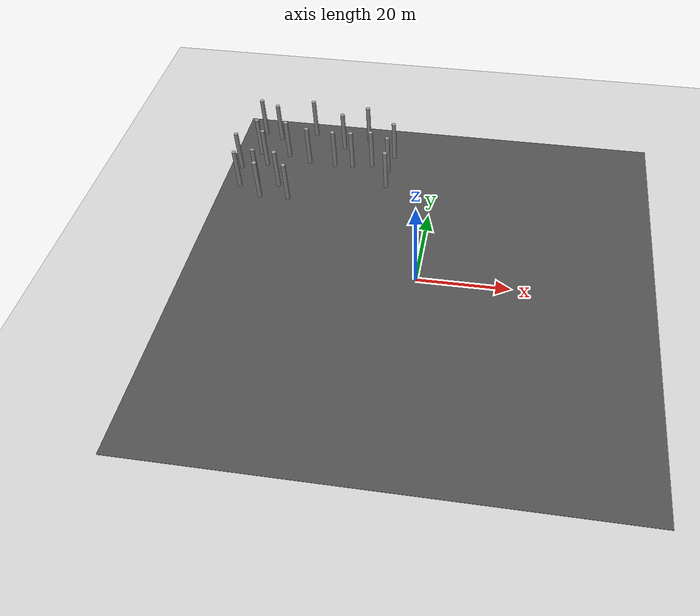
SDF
<sdf version="1.6">
 <world name="default">
  <model name="ground_plane">
   <static>1</static>
   <link name="link">
    <collision name="collision">
     <geometry><plane><normal>0 0 1</normal><size>100 100</size></plane></geometry>
     <surface><friction><ode><mu>100</mu><mu2>50</mu2></ode></friction></surface>
    </collision>
    <visual name="visual">
     <cast_shadows>0</cast_shadows>
     <geometry><plane><normal>0 0 1</normal><size>100 100</size></plane></geometry>
     <material>
      <script><uri>file://media/materials/scripts/gazebo.material</uri><name>Gazebo/Grey</name></script>
     </material>
    </visual>
   </link>
  </model>
  <model name="asphalt_plane">
   <static>1</static>
   <link name="link">
    <collision name="collision"><geometry><box><size>100 100 0.1</size></box></geometry></collision>
    <visual name="visual">
     <cast_shadows>0</cast_shadows>
     <geometry><box><size>100 100 0.1</size></box></geometry>
     <material>
      <script>
       <uri>model://asphalt_plane/materials/scripts</uri>
       <uri>model://asphalt_plane/materials/textures</uri>
       <name>vrc/asphalt</name>
      </script>
     </material>
    </visual>
   </link>
   <pose>0.078502 0.417861 0 0 -0 0</pose>
  </model>
  <model name="forest">
   <link name="link_clone_13_clone_11">
    <pose>-20.1128 35.8889 0 0 -0 0</pose>
    <inertial>
     <mass>1000</mass>
     <inertia><ixx>0.145833</ixx><ixy>0</ixy><ixz>0</ixz><iyy>0.145833</iyy><iyz>0</iyz><izz>0.125</izz></inertia>
     <pose>0 0 5 0 -0 0</pose>
    </inertial>
    <visual name="visual">
     <geometry><cylinder><radius>0.5</radius><length>10</length></cylinder></geometry>
     <material>
      <script><name>Gazebo/Grey</name><uri>file://media/materials/scripts/gazebo.material</uri></script>
      <ambient>0.3 0.3 0.3 1</ambient>
      <diffuse>0.7 0.7 0.7 1</diffuse>
      <specular>0.01 0.01 0.01 1</specular>
      <emissive>0 0 0 1</emissive>
      <shader type="vertex"><normal_map>__default__</normal_map></shader>
     </material>
     <pose>0 0 5 0 -0 0</pose>
    </visual>
    <collision name="collision">
     <pose>0 0 5 0 -0 0</pose>
     <geometry><cylinder><radius>0.5</radius><length>10</length></cylinder></geometry>
     <surface>
      <friction>
       <ode><mu>1</mu><mu2>1</mu2><fdir1>0 0 0</fdir1><slip1>0</slip1><slip2>0</slip2></ode>
       <torsional>
        <coefficient>1</coefficient>
        <patch_radius>0</patch_radius>
        <surface_radius>0</surface_radius>
        <use_patch_radius>1</use_patch_radius>
        <ode><slip>0</slip></ode>
       </torsional>
      </friction>
      <bounce><restitution_coefficient>0</restitution_coefficient><threshold>1e+06</threshold></bounce>
      <contact>
       <collide_without_contact>0</collide_without_contact>
       <collide_without_contact_bitmask>1</collide_without_contact_bitmask>
       <collide_bitmask>1</collide_bitmask>
       <ode>
        <soft_cfm>0</soft_cfm>
        <soft_erp>0.2</soft_erp>
        <kp>1e+13</kp>
        <kd>1</kd>
        <max_vel>0.01</max_vel>
        <min_depth>0</min_depth>
       </ode>
       <bullet>
        <split_impulse>1</split_impulse>
        <split_impulse_penetration_threshold>-0.01</split_impulse_penetration_threshold>
        <soft_cfm>0</soft_cfm>
        <soft_erp>0.2</soft_erp>
        <kp>1e+13</kp>
        <kd>1</kd>
       </bullet>
      </contact>
     </surface>
    </collision>
   </link>
   <link name="link_clone_13_clone_2">
    <pose>-10.8466 29.7188 0 0 -0 0</pose>
    <inertial>
     <mass>1000</mass>
     <inertia><ixx>0.145833</ixx><ixy>0</ixy><ixz>0</ixz><iyy>0.145833</iyy><iyz>0</iyz><izz>0.125</izz></inertia>
     <pose>0 0 5 0 -0 0</pose>
    </inertial>
    <visual name="visual">
     <geometry><cylinder><radius>0.5</radius><length>10</length></cylinder></geometry>
     <material>
      <script><name>Gazebo/Grey</name><uri>file://media/materials/scripts/gazebo.material</uri></script>
      <ambient>0.3 0.3 0.3 1</ambient>
      <diffuse>0.7 0.7 0.7 1</diffuse>
      <specular>0.01 0.01 0.01 1</specular>
      <emissive>0 0 0 1</emissive>
      <shader type="vertex"><normal_map>__default__</normal_map></shader>
     </material>
     <pose>0 0 5 0 -0 0</pose>
    </visual>
    <collision name="collision">
     <pose>0 0 5 0 -0 0</pose>
     <geometry><cylinder><radius>0.5</radius><length>10</length></cylinder></geometry>
     <surface>
      <friction>
       <ode><mu>1</mu><mu2>1</mu2><fdir1>0 0 0</fdir1><slip1>0</slip1><slip2>0</slip2></ode>
       <torsional>
        <coefficient>1</coefficient>
        <patch_radius>0</patch_radius>
        <surface_radius>0</surface_radius>
        <use_patch_radius>1</use_patch_radius>
        <ode><slip>0</slip></ode>
       </torsional>
      </friction>
      <bounce><restitution_coefficient>0</restitution_coefficient><threshold>1e+06</threshold></bounce>
      <contact>
       <collide_without_contact>0</collide_without_contact>
       <collide_without_contact_bitmask>1</collide_without_contact_bitmask>
       <collide_bitmask>1</collide_bitmask>
       <ode>
        <soft_cfm>0</soft_cfm>
        <soft_erp>0.2</soft_erp>
        <kp>1e+13</kp>
        <kd>1</kd>
        <max_vel>0.01</max_vel>
        <min_depth>0</min_depth>
       </ode>
       <bullet>
        <split_impulse>1</split_impulse>
        <split_impulse_penetration_threshold>-0.01</split_impulse_penetration_threshold>
        <soft_cfm>0</soft_cfm>
        <soft_erp>0.2</soft_erp>
        <kp>1e+13</kp>
        <kd>1</kd>
       </bullet>
      </contact>
     </surface>
    </collision>
   </link>
   <link name="link_clone_13_clone_44">
    <pose>-17.8127 46.1812 0 0 -0 0</pose>
    <inertial>
     <mass>1000</mass>
     <inertia><ixx>0.145833</ixx><ixy>0</ixy><ixz>0</ixz><iyy>0.145833</iyy><iyz>0</iyz><izz>0.125</izz></inertia>
     <pose>0 0 5 0 -0 0</pose>
    </inertial>
    <visual name="visual">
     <geometry><cylinder><radius>0.5</radius><length>10</length></cylinder></geometry>
     <material>
      <script><name>Gazebo/Grey</name><uri>file://media/materials/scripts/gazebo.material</uri></script>
      <ambient>0.3 0.3 0.3 1</ambient>
      <diffuse>0.7 0.7 0.7 1</diffuse>
      <specular>0.01 0.01 0.01 1</specular>
      <emissive>0 0 0 1</emissive>
      <shader type="vertex"><normal_map>__default__</normal_map></shader>
     </material>
     <pose>0 0 5 0 -0 0</pose>
    </visual>
    <collision name="collision">
     <pose>0 0 5 0 -0 0</pose>
     <geometry><cylinder><radius>0.5</radius><length>10</length></cylinder></geometry>
     <surface>
      <friction>
       <ode><mu>1</mu><mu2>1</mu2><fdir1>0 0 0</fdir1><slip1>0</slip1><slip2>0</slip2></ode>
       <torsional>
        <coefficient>1</coefficient>
        <patch_radius>0</patch_radius>
        <surface_radius>0</surface_radius>
        <use_patch_radius>1</use_patch_radius>
        <ode><slip>0</slip></ode>
       </torsional>
      </friction>
      <bounce><restitution_coefficient>0</restitution_coefficient><threshold>1e+06</threshold></bounce>
      <contact>
       <collide_without_contact>0</collide_without_contact>
       <collide_without_contact_bitmask>1</collide_without_contact_bitmask>
       <collide_bitmask>1</collide_bitmask>
       <ode>
        <soft_cfm>0</soft_cfm>
        <soft_erp>0.2</soft_erp>
        <kp>1e+13</kp>
        <kd>1</kd>
        <max_vel>0.01</max_vel>
        <min_depth>0</min_depth>
       </ode>
       <bullet>
        <split_impulse>1</split_impulse>
        <split_impulse_penetration_threshold>-0.01</split_impulse_penetration_threshold>
        <soft_cfm>0</soft_cfm>
        <soft_erp>0.2</soft_erp>
        <kp>1e+13</kp>
        <kd>1</kd>
       </bullet>
      </contact>
     </surface>
    </collision>
   </link>
   <link name="link_clone_13_clone_45">
    <pose>-23.4129 42.7646 0 0 -0 0</pose>
    <inertial>
     <mass>1000</mass>
     <inertia><ixx>0.145833</ixx><ixy>0</ixy><ixz>0</ixz><iyy>0.145833</iyy><iyz>0</iyz><izz>0.125</izz></inertia>
     <pose>0 0 5 0 -0 0</pose>
    </inertial>
    <visual name="visual">
     <geometry><cylinder><radius>0.5</radius><length>10</length></cylinder></geometry>
     <material>
      <script><name>Gazebo/Grey</name><uri>file://media/materials/scripts/gazebo.material</uri></script>
      <ambient>0.3 0.3 0.3 1</ambient>
      <diffuse>0.7 0.7 0.7 1</diffuse>
      <specular>0.01 0.01 0.01 1</specular>
      <emissive>0 0 0 1</emissive>
      <shader type="vertex"><normal_map>__default__</normal_map></shader>
     </material>
     <pose>0 0 5 0 -0 0</pose>
    </visual>
    <collision name="collision">
     <pose>0 0 5 0 -0 0</pose>
     <geometry><cylinder><radius>0.5</radius><length>10</length></cylinder></geometry>
     <surface>
      <friction>
       <ode><mu>1</mu><mu2>1</mu2><fdir1>0 0 0</fdir1><slip1>0</slip1><slip2>0</slip2></ode>
       <torsional>
        <coefficient>1</coefficient>
        <patch_radius>0</patch_radius>
        <surface_radius>0</surface_radius>
        <use_patch_radius>1</use_patch_radius>
        <ode><slip>0</slip></ode>
       </torsional>
      </friction>
      <bounce><restitution_coefficient>0</restitution_coefficient><threshold>1e+06</threshold></bounce>
      <contact>
       <collide_without_contact>0</collide_without_contact>
       <collide_without_contact_bitmask>1</collide_without_contact_bitmask>
       <collide_bitmask>1</collide_bitmask>
       <ode>
        <soft_cfm>0</soft_cfm>
        <soft_erp>0.2</soft_erp>
        <kp>1e+13</kp>
        <kd>1</kd>
        <max_vel>0.01</max_vel>
        <min_depth>0</min_depth>
       </ode>
       <bullet>
        <split_impulse>1</split_impulse>
        <split_impulse_penetration_threshold>-0.01</split_impulse_penetration_threshold>
        <soft_cfm>0</soft_cfm>
        <soft_erp>0.2</soft_erp>
        <kp>1e+13</kp>
        <kd>1</kd>
       </bullet>
      </contact>
     </surface>
    </collision>
   </link>
   <link name="link_clone_13_clone_46">
    <pose>-30.7424 36.0761 0 0 -0 0</pose>
    <inertial>
     <mass>1000</mass>
     <inertia><ixx>0.145833</ixx><ixy>0</ixy><ixz>0</ixz><iyy>0.145833</iyy><iyz>0</iyz><izz>0.125</izz></inertia>
     <pose>0 0 5 0 -0 0</pose>
    </inertial>
    <visual name="visual">
     <geometry><cylinder><radius>0.5</radius><length>10</length></cylinder></geometry>
     <material>
      <script><name>Gazebo/Grey</name><uri>file://media/materials/scripts/gazebo.material</uri></script>
      <ambient>0.3 0.3 0.3 1</ambient>
      <diffuse>0.7 0.7 0.7 1</diffuse>
      <specular>0.01 0.01 0.01 1</specular>
      <emissive>0 0 0 1</emissive>
      <shader type="vertex"><normal_map>__default__</normal_map></shader>
     </material>
     <pose>0 0 5 0 -0 0</pose>
    </visual>
    <collision name="collision">
     <pose>0 0 5 0 -0 0</pose>
     <geometry><cylinder><radius>0.5</radius><length>10</length></cylinder></geometry>
     <surface>
      <friction>
       <ode><mu>1</mu><mu2>1</mu2><fdir1>0 0 0</fdir1><slip1>0</slip1><slip2>0</slip2></ode>
       <torsional>
        <coefficient>1</coefficient>
        <patch_radius>0</patch_radius>
        <surface_radius>0</surface_radius>
        <use_patch_radius>1</use_patch_radius>
        <ode><slip>0</slip></ode>
       </torsional>
      </friction>
      <bounce><restitution_coefficient>0</restitution_coefficient><threshold>1e+06</threshold></bounce>
      <contact>
       <collide_without_contact>0</collide_without_contact>
       <collide_without_contact_bitmask>1</collide_without_contact_bitmask>
       <collide_bitmask>1</collide_bitmask>
       <ode>
        <soft_cfm>0</soft_cfm>
        <soft_erp>0.2</soft_erp>
        <kp>1e+13</kp>
        <kd>1</kd>
        <max_vel>0.01</max_vel>
        <min_depth>0</min_depth>
       </ode>
       <bullet>
        <split_impulse>1</split_impulse>
        <split_impulse_penetration_threshold>-0.01</split_impulse_penetration_threshold>
        <soft_cfm>0</soft_cfm>
        <soft_erp>0.2</soft_erp>
        <kp>1e+13</kp>
        <kd>1</kd>
       </bullet>
      </contact>
     </surface>
    </collision>
   </link>
   <link name="link_clone_13_clone_48">
    <pose>-24.3524 35.6446 0 0 -0 0</pose>
    <inertial>
     <mass>1000</mass>
     <inertia><ixx>0.145833</ixx><ixy>0</ixy><ixz>0</ixz><iyy>0.145833</iyy><iyz>0</iyz><izz>0.125</izz></inertia>
     <pose>0 0 5 0 -0 0</pose>
    </inertial>
    <visual name="visual">
     <geometry><cylinder><radius>0.5</radius><length>10</length></cylinder></geometry>
     <material>
      <script><name>Gazebo/Grey</name><uri>file://media/materials/scripts/gazebo.material</uri></script>
      <ambient>0.3 0.3 0.3 1</ambient>
      <diffuse>0.7 0.7 0.7 1</diffuse>
      <specular>0.01 0.01 0.01 1</specular>
      <emissive>0 0 0 1</emissive>
      <shader type="vertex"><normal_map>__default__</normal_map></shader>
     </material>
     <pose>0 0 5 0 -0 0</pose>
    </visual>
    <collision name="collision">
     <pose>0 0 5 0 -0 0</pose>
     <geometry><cylinder><radius>0.5</radius><length>10</length></cylinder></geometry>
     <surface>
      <friction>
       <ode><mu>1</mu><mu2>1</mu2><fdir1>0 0 0</fdir1><slip1>0</slip1><slip2>0</slip2></ode>
       <torsional>
        <coefficient>1</coefficient>
        <patch_radius>0</patch_radius>
        <surface_radius>0</surface_radius>
        <use_patch_radius>1</use_patch_radius>
        <ode><slip>0</slip></ode>
       </torsional>
      </friction>
      <bounce><restitution_coefficient>0</restitution_coefficient><threshold>1e+06</threshold></bounce>
      <contact>
       <collide_without_contact>0</collide_without_contact>
       <collide_without_contact_bitmask>1</collide_without_contact_bitmask>
       <collide_bitmask>1</collide_bitmask>
       <ode>
        <soft_cfm>0</soft_cfm>
        <soft_erp>0.2</soft_erp>
        <kp>1e+13</kp>
        <kd>1</kd>
        <max_vel>0.01</max_vel>
        <min_depth>0</min_depth>
       </ode>
       <bullet>
        <split_impulse>1</split_impulse>
        <split_impulse_penetration_threshold>-0.01</split_impulse_penetration_threshold>
        <soft_cfm>0</soft_cfm>
        <soft_erp>0.2</soft_erp>
        <kp>1e+13</kp>
        <kd>1</kd>
       </bullet>
      </contact>
     </surface>
    </collision>
   </link>
   <link name="link_clone_13_clone_5">
    <pose>-10.5712 40.7884 0 0 -0 0</pose>
    <inertial>
     <mass>1000</mass>
     <inertia><ixx>0.145833</ixx><ixy>0</ixy><ixz>0</ixz><iyy>0.145833</iyy><iyz>0</iyz><izz>0.125</izz></inertia>
     <pose>0 0 5 0 -0 0</pose>
    </inertial>
    <visual name="visual">
     <geometry><cylinder><radius>0.5</radius><length>10</length></cylinder></geometry>
     <material>
      <script><name>Gazebo/Grey</name><uri>file://media/materials/scripts/gazebo.material</uri></script>
      <ambient>0.3 0.3 0.3 1</ambient>
      <diffuse>0.7 0.7 0.7 1</diffuse>
      <specular>0.01 0.01 0.01 1</specular>
      <emissive>0 0 0 1</emissive>
      <shader type="vertex"><normal_map>__default__</normal_map></shader>
     </material>
     <pose>0 0 5 0 -0 0</pose>
    </visual>
    <collision name="collision">
     <pose>0 0 5 0 -0 0</pose>
     <geometry><cylinder><radius>0.5</radius><length>10</length></cylinder></geometry>
     <surface>
      <friction>
       <ode><mu>1</mu><mu2>1</mu2><fdir1>0 0 0</fdir1><slip1>0</slip1><slip2>0</slip2></ode>
       <torsional>
        <coefficient>1</coefficient>
        <patch_radius>0</patch_radius>
        <surface_radius>0</surface_radius>
        <use_patch_radius>1</use_patch_radius>
        <ode><slip>0</slip></ode>
       </torsional>
      </friction>
      <bounce><restitution_coefficient>0</restitution_coefficient><threshold>1e+06</threshold></bounce>
      <contact>
       <collide_without_contact>0</collide_without_contact>
       <collide_without_contact_bitmask>1</collide_without_contact_bitmask>
       <collide_bitmask>1</collide_bitmask>
       <ode>
        <soft_cfm>0</soft_cfm>
        <soft_erp>0.2</soft_erp>
        <kp>1e+13</kp>
        <kd>1</kd>
        <max_vel>0.01</max_vel>
        <min_depth>0</min_depth>
       </ode>
       <bullet>
        <split_impulse>1</split_impulse>
        <split_impulse_penetration_threshold>-0.01</split_impulse_penetration_threshold>
        <soft_cfm>0</soft_cfm>
        <soft_erp>0.2</soft_erp>
        <kp>1e+13</kp>
        <kd>1</kd>
       </bullet>
      </contact>
     </surface>
    </collision>
   </link>
   <link name="link_clone_13_clone_50">
    <pose>-36.1059 26.5286 0 0 -0 0</pose>
    <inertial>
     <mass>1000</mass>
     <inertia><ixx>0.145833</ixx><ixy>0</ixy><ixz>0</ixz><iyy>0.145833</iyy><iyz>0</iyz><izz>0.125</izz></inertia>
     <pose>0 0 5 0 -0 0</pose>
    </inertial>
    <visual name="visual">
     <geometry><cylinder><radius>0.5</radius><length>10</length></cylinder></geometry>
     <material>
      <script><name>Gazebo/Grey</name><uri>file://media/materials/scripts/gazebo.material</uri></script>
      <ambient>0.3 0.3 0.3 1</ambient>
      <diffuse>0.7 0.7 0.7 1</diffuse>
      <specular>0.01 0.01 0.01 1</specular>
      <emissive>0 0 0 1</emissive>
      <shader type="vertex"><normal_map>__default__</normal_map></shader>
     </material>
     <pose>0 0 5 0 -0 0</pose>
    </visual>
    <collision name="collision">
     <pose>0 0 5 0 -0 0</pose>
     <geometry><cylinder><radius>0.5</radius><length>10</length></cylinder></geometry>
     <surface>
      <friction>
       <ode><mu>1</mu><mu2>1</mu2><fdir1>0 0 0</fdir1><slip1>0</slip1><slip2>0</slip2></ode>
       <torsional>
        <coefficient>1</coefficient>
        <patch_radius>0</patch_radius>
        <surface_radius>0</surface_radius>
        <use_patch_radius>1</use_patch_radius>
        <ode><slip>0</slip></ode>
       </torsional>
      </friction>
      <bounce><restitution_coefficient>0</restitution_coefficient><threshold>1e+06</threshold></bounce>
      <contact>
       <collide_without_contact>0</collide_without_contact>
       <collide_without_contact_bitmask>1</collide_without_contact_bitmask>
       <collide_bitmask>1</collide_bitmask>
       <ode>
        <soft_cfm>0</soft_cfm>
        <soft_erp>0.2</soft_erp>
        <kp>1e+13</kp>
        <kd>1</kd>
        <max_vel>0.01</max_vel>
        <min_depth>0</min_depth>
       </ode>
       <bullet>
        <split_impulse>1</split_impulse>
        <split_impulse_penetration_threshold>-0.01</split_impulse_penetration_threshold>
        <soft_cfm>0</soft_cfm>
        <soft_erp>0.2</soft_erp>
        <kp>1e+13</kp>
        <kd>1</kd>
       </bullet>
      </contact>
     </surface>
    </collision>
   </link>
   <link name="link_clone_13_clone_51">
    <pose>-36.2123 37.7752 0 0 -0 0</pose>
    <inertial>
     <mass>1000</mass>
     <inertia><ixx>0.145833</ixx><ixy>0</ixy><ixz>0</ixz><iyy>0.145833</iyy><iyz>0</iyz><izz>0.125</izz></inertia>
     <pose>0 0 5 0 -0 0</pose>
    </inertial>
    <visual name="visual">
     <geometry><cylinder><radius>0.5</radius><length>10</length></cylinder></geometry>
     <material>
      <script><name>Gazebo/Grey</name><uri>file://media/materials/scripts/gazebo.material</uri></script>
      <ambient>0.3 0.3 0.3 1</ambient>
      <diffuse>0.7 0.7 0.7 1</diffuse>
      <specular>0.01 0.01 0.01 1</specular>
      <emissive>0 0 0 1</emissive>
      <shader type="vertex"><normal_map>__default__</normal_map></shader>
     </material>
     <pose>0 0 5 0 -0 0</pose>
    </visual>
    <collision name="collision">
     <pose>0 0 5 0 -0 0</pose>
     <geometry><cylinder><radius>0.5</radius><length>10</length></cylinder></geometry>
     <surface>
      <friction>
       <ode><mu>1</mu><mu2>1</mu2><fdir1>0 0 0</fdir1><slip1>0</slip1><slip2>0</slip2></ode>
       <torsional>
        <coefficient>1</coefficient>
        <patch_radius>0</patch_radius>
        <surface_radius>0</surface_radius>
        <use_patch_radius>1</use_patch_radius>
        <ode><slip>0</slip></ode>
       </torsional>
      </friction>
      <bounce><restitution_coefficient>0</restitution_coefficient><threshold>1e+06</threshold></bounce>
      <contact>
       <collide_without_contact>0</collide_without_contact>
       <collide_without_contact_bitmask>1</collide_without_contact_bitmask>
       <collide_bitmask>1</collide_bitmask>
       <ode>
        <soft_cfm>0</soft_cfm>
        <soft_erp>0.2</soft_erp>
        <kp>1e+13</kp>
        <kd>1</kd>
        <max_vel>0.01</max_vel>
        <min_depth>0</min_depth>
       </ode>
       <bullet>
        <split_impulse>1</split_impulse>
        <split_impulse_penetration_threshold>-0.01</split_impulse_penetration_threshold>
        <soft_cfm>0</soft_cfm>
        <soft_erp>0.2</soft_erp>
        <kp>1e+13</kp>
        <kd>1</kd>
       </bullet>
      </contact>
     </surface>
    </collision>
   </link>
   <link name="link_clone_13_clone_52">
    <pose>-31.4868 47.0307 0 0 -0 0</pose>
    <inertial>
     <mass>1000</mass>
     <inertia><ixx>0.145833</ixx><ixy>0</ixy><ixz>0</ixz><iyy>0.145833</iyy><iyz>0</iyz><izz>0.125</izz></inertia>
     <pose>0 0 5 0 -0 0</pose>
    </inertial>
    <visual name="visual">
     <geometry><cylinder><radius>0.5</radius><length>10</length></cylinder></geometry>
     <material>
      <script><name>Gazebo/Grey</name><uri>file://media/materials/scripts/gazebo.material</uri></script>
      <ambient>0.3 0.3 0.3 1</ambient>
      <diffuse>0.7 0.7 0.7 1</diffuse>
      <specular>0.01 0.01 0.01 1</specular>
      <emissive>0 0 0 1</emissive>
      <shader type="vertex"><normal_map>__default__</normal_map></shader>
     </material>
     <pose>0 0 5 0 -0 0</pose>
    </visual>
    <collision name="collision">
     <pose>0 0 5 0 -0 0</pose>
     <geometry><cylinder><radius>0.5</radius><length>10</length></cylinder></geometry>
     <surface>
      <friction>
       <ode><mu>1</mu><mu2>1</mu2><fdir1>0 0 0</fdir1><slip1>0</slip1><slip2>0</slip2></ode>
       <torsional>
        <coefficient>1</coefficient>
        <patch_radius>0</patch_radius>
        <surface_radius>0</surface_radius>
        <use_patch_radius>1</use_patch_radius>
        <ode><slip>0</slip></ode>
       </torsional>
      </friction>
      <bounce><restitution_coefficient>0</restitution_coefficient><threshold>1e+06</threshold></bounce>
      <contact>
       <collide_without_contact>0</collide_without_contact>
       <collide_without_contact_bitmask>1</collide_without_contact_bitmask>
       <collide_bitmask>1</collide_bitmask>
       <ode>
        <soft_cfm>0</soft_cfm>
        <soft_erp>0.2</soft_erp>
        <kp>1e+13</kp>
        <kd>1</kd>
        <max_vel>0.01</max_vel>
        <min_depth>0</min_depth>
       </ode>
       <bullet>
        <split_impulse>1</split_impulse>
        <split_impulse_penetration_threshold>-0.01</split_impulse_penetration_threshold>
        <soft_cfm>0</soft_cfm>
        <soft_erp>0.2</soft_erp>
        <kp>1e+13</kp>
        <kd>1</kd>
       </bullet>
      </contact>
     </surface>
    </collision>
   </link>
   <link name="link_clone_13_clone_53">
    <pose>-44.1868 45.7176 0 0 -0 0</pose>
    <inertial>
     <mass>1000</mass>
     <inertia><ixx>0.145833</ixx><ixy>0</ixy><ixz>0</ixz><iyy>0.145833</iyy><iyz>0</iyz><izz>0.125</izz></inertia>
     <pose>0 0 5 0 -0 0</pose>
    </inertial>
    <visual name="visual">
     <geometry><cylinder><radius>0.5</radius><length>10</length></cylinder></geometry>
     <material>
      <script><name>Gazebo/Grey</name><uri>file://media/materials/scripts/gazebo.material</uri></script>
      <ambient>0.3 0.3 0.3 1</ambient>
      <diffuse>0.7 0.7 0.7 1</diffuse>
      <specular>0.01 0.01 0.01 1</specular>
      <emissive>0 0 0 1</emissive>
      <shader type="vertex"><normal_map>__default__</normal_map></shader>
     </material>
     <pose>0 0 5 0 -0 0</pose>
    </visual>
    <collision name="collision">
     <pose>0 0 5 0 -0 0</pose>
     <geometry><cylinder><radius>0.5</radius><length>10</length></cylinder></geometry>
     <surface>
      <friction>
       <ode><mu>1</mu><mu2>1</mu2><fdir1>0 0 0</fdir1><slip1>0</slip1><slip2>0</slip2></ode>
       <torsional>
        <coefficient>1</coefficient>
        <patch_radius>0</patch_radius>
        <surface_radius>0</surface_radius>
        <use_patch_radius>1</use_patch_radius>
        <ode><slip>0</slip></ode>
       </torsional>
      </friction>
      <bounce><restitution_coefficient>0</restitution_coefficient><threshold>1e+06</threshold></bounce>
      <contact>
       <collide_without_contact>0</collide_without_contact>
       <collide_without_contact_bitmask>1</collide_without_contact_bitmask>
       <collide_bitmask>1</collide_bitmask>
       <ode>
        <soft_cfm>0</soft_cfm>
        <soft_erp>0.2</soft_erp>
        <kp>1e+13</kp>
        <kd>1</kd>
        <max_vel>0.01</max_vel>
        <min_depth>0</min_depth>
       </ode>
       <bullet>
        <split_impulse>1</split_impulse>
        <split_impulse_penetration_threshold>-0.01</split_impulse_penetration_threshold>
        <soft_cfm>0</soft_cfm>
        <soft_erp>0.2</soft_erp>
        <kp>1e+13</kp>
        <kd>1</kd>
       </bullet>
      </contact>
     </surface>
    </collision>
   </link>
   <link name="link_clone_13_clone_54">
    <pose>-39.7975 44.1049 0 0 -0 0</pose>
    <inertial>
     <mass>1000</mass>
     <inertia><ixx>0.145833</ixx><ixy>0</ixy><ixz>0</ixz><iyy>0.145833</iyy><iyz>0</iyz><izz>0.125</izz></inertia>
     <pose>0 0 5 0 -0 0</pose>
    </inertial>
    <visual name="visual">
     <geometry><cylinder><radius>0.5</radius><length>10</length></cylinder></geometry>
     <material>
      <script><name>Gazebo/Grey</name><uri>file://media/materials/scripts/gazebo.material</uri></script>
      <ambient>0.3 0.3 0.3 1</ambient>
      <diffuse>0.7 0.7 0.7 1</diffuse>
      <specular>0.01 0.01 0.01 1</specular>
      <emissive>0 0 0 1</emissive>
      <shader type="vertex"><normal_map>__default__</normal_map></shader>
     </material>
     <pose>0 0 5 0 -0 0</pose>
    </visual>
    <collision name="collision">
     <pose>0 0 5 0 -0 0</pose>
     <geometry><cylinder><radius>0.5</radius><length>10</length></cylinder></geometry>
     <surface>
      <friction>
       <ode><mu>1</mu><mu2>1</mu2><fdir1>0 0 0</fdir1><slip1>0</slip1><slip2>0</slip2></ode>
       <torsional>
        <coefficient>1</coefficient>
        <patch_radius>0</patch_radius>
        <surface_radius>0</surface_radius>
        <use_patch_radius>1</use_patch_radius>
        <ode><slip>0</slip></ode>
       </torsional>
      </friction>
      <bounce><restitution_coefficient>0</restitution_coefficient><threshold>1e+06</threshold></bounce>
      <contact>
       <collide_without_contact>0</collide_without_contact>
       <collide_without_contact_bitmask>1</collide_without_contact_bitmask>
       <collide_bitmask>1</collide_bitmask>
       <ode>
        <soft_cfm>0</soft_cfm>
        <soft_erp>0.2</soft_erp>
        <kp>1e+13</kp>
        <kd>1</kd>
        <max_vel>0.01</max_vel>
        <min_depth>0</min_depth>
       </ode>
       <bullet>
        <split_impulse>1</split_impulse>
        <split_impulse_penetration_threshold>-0.01</split_impulse_penetration_threshold>
        <soft_cfm>0</soft_cfm>
        <soft_erp>0.2</soft_erp>
        <kp>1e+13</kp>
        <kd>1</kd>
       </bullet>
      </contact>
     </surface>
    </collision>
   </link>
   <link name="link_clone_13_clone_55">
    <pose>-43.2761 37.8043 0 0 -0 0</pose>
    <inertial>
     <mass>1000</mass>
     <inertia><ixx>0.145833</ixx><ixy>0</ixy><ixz>0</ixz><iyy>0.145833</iyy><iyz>0</iyz><izz>0.125</izz></inertia>
     <pose>0 0 5 0 -0 0</pose>
    </inertial>
    <visual name="visual">
     <geometry><cylinder><radius>0.5</radius><length>10</length></cylinder></geometry>
     <material>
      <script><name>Gazebo/Grey</name><uri>file://media/materials/scripts/gazebo.material</uri></script>
      <ambient>0.3 0.3 0.3 1</ambient>
      <diffuse>0.7 0.7 0.7 1</diffuse>
      <specular>0.01 0.01 0.01 1</specular>
      <emissive>0 0 0 1</emissive>
      <shader type="vertex"><normal_map>__default__</normal_map></shader>
     </material>
     <pose>0 0 5 0 -0 0</pose>
    </visual>
    <collision name="collision">
     <pose>0 0 5 0 -0 0</pose>
     <geometry><cylinder><radius>0.5</radius><length>10</length></cylinder></geometry>
     <surface>
      <friction>
       <ode><mu>1</mu><mu2>1</mu2><fdir1>0 0 0</fdir1><slip1>0</slip1><slip2>0</slip2></ode>
       <torsional>
        <coefficient>1</coefficient>
        <patch_radius>0</patch_radius>
        <surface_radius>0</surface_radius>
        <use_patch_radius>1</use_patch_radius>
        <ode><slip>0</slip></ode>
       </torsional>
      </friction>
      <bounce><restitution_coefficient>0</restitution_coefficient><threshold>1e+06</threshold></bounce>
      <contact>
       <collide_without_contact>0</collide_without_contact>
       <collide_without_contact_bitmask>1</collide_without_contact_bitmask>
       <collide_bitmask>1</collide_bitmask>
       <ode>
        <soft_cfm>0</soft_cfm>
        <soft_erp>0.2</soft_erp>
        <kp>1e+13</kp>
        <kd>1</kd>
        <max_vel>0.01</max_vel>
        <min_depth>0</min_depth>
       </ode>
       <bullet>
        <split_impulse>1</split_impulse>
        <split_impulse_penetration_threshold>-0.01</split_impulse_penetration_threshold>
        <soft_cfm>0</soft_cfm>
        <soft_erp>0.2</soft_erp>
        <kp>1e+13</kp>
        <kd>1</kd>
       </bullet>
      </contact>
     </surface>
    </collision>
   </link>
   <link name="link_clone_13_clone_56">
    <pose>-46.6596 31.9243 0 0 -0 0</pose>
    <inertial>
     <mass>1000</mass>
     <inertia><ixx>0.145833</ixx><ixy>0</ixy><ixz>0</ixz><iyy>0.145833</iyy><iyz>0</iyz><izz>0.125</izz></inertia>
     <pose>0 0 5 0 -0 0</pose>
    </inertial>
    <visual name="visual">
     <geometry><cylinder><radius>0.5</radius><length>10</length></cylinder></geometry>
     <material>
      <script><name>Gazebo/Grey</name><uri>file://media/materials/scripts/gazebo.material</uri></script>
      <ambient>0.3 0.3 0.3 1</ambient>
      <diffuse>0.7 0.7 0.7 1</diffuse>
      <specular>0.01 0.01 0.01 1</specular>
      <emissive>0 0 0 1</emissive>
      <shader type="vertex"><normal_map>__default__</normal_map></shader>
     </material>
     <pose>0 0 5 0 -0 0</pose>
    </visual>
    <collision name="collision">
     <pose>0 0 5 0 -0 0</pose>
     <geometry><cylinder><radius>0.5</radius><length>10</length></cylinder></geometry>
     <surface>
      <friction>
       <ode><mu>1</mu><mu2>1</mu2><fdir1>0 0 0</fdir1><slip1>0</slip1><slip2>0</slip2></ode>
       <torsional>
        <coefficient>1</coefficient>
        <patch_radius>0</patch_radius>
        <surface_radius>0</surface_radius>
        <use_patch_radius>1</use_patch_radius>
        <ode><slip>0</slip></ode>
       </torsional>
      </friction>
      <bounce><restitution_coefficient>0</restitution_coefficient><threshold>1e+06</threshold></bounce>
      <contact>
       <collide_without_contact>0</collide_without_contact>
       <collide_without_contact_bitmask>1</collide_without_contact_bitmask>
       <collide_bitmask>1</collide_bitmask>
       <ode>
        <soft_cfm>0</soft_cfm>
        <soft_erp>0.2</soft_erp>
        <kp>1e+13</kp>
        <kd>1</kd>
        <max_vel>0.01</max_vel>
        <min_depth>0</min_depth>
       </ode>
       <bullet>
        <split_impulse>1</split_impulse>
        <split_impulse_penetration_threshold>-0.01</split_impulse_penetration_threshold>
        <soft_cfm>0</soft_cfm>
        <soft_erp>0.2</soft_erp>
        <kp>1e+13</kp>
        <kd>1</kd>
       </bullet>
      </contact>
     </surface>
    </collision>
   </link>
   <link name="link_clone_13_clone_57">
    <pose>-40.7948 33.8043 0 0 -0 0</pose>
    <inertial>
     <mass>1000</mass>
     <inertia><ixx>0.145833</ixx><ixy>0</ixy><ixz>0</ixz><iyy>0.145833</iyy><iyz>0</iyz><izz>0.125</izz></inertia>
     <pose>0 0 5 0 -0 0</pose>
    </inertial>
    <visual name="visual">
     <geometry><cylinder><radius>0.5</radius><length>10</length></cylinder></geometry>
     <material>
      <script><name>Gazebo/Grey</name><uri>file://media/materials/scripts/gazebo.material</uri></script>
      <ambient>0.3 0.3 0.3 1</ambient>
      <diffuse>0.7 0.7 0.7 1</diffuse>
      <specular>0.01 0.01 0.01 1</specular>
      <emissive>0 0 0 1</emissive>
      <shader type="vertex"><normal_map>__default__</normal_map></shader>
     </material>
     <pose>0 0 5 0 -0 0</pose>
    </visual>
    <collision name="collision">
     <pose>0 0 5 0 -0 0</pose>
     <geometry><cylinder><radius>0.5</radius><length>10</length></cylinder></geometry>
     <surface>
      <friction>
       <ode><mu>1</mu><mu2>1</mu2><fdir1>0 0 0</fdir1><slip1>0</slip1><slip2>0</slip2></ode>
       <torsional>
        <coefficient>1</coefficient>
        <patch_radius>0</patch_radius>
        <surface_radius>0</surface_radius>
        <use_patch_radius>1</use_patch_radius>
        <ode><slip>0</slip></ode>
       </torsional>
      </friction>
      <bounce><restitution_coefficient>0</restitution_coefficient><threshold>1e+06</threshold></bounce>
      <contact>
       <collide_without_contact>0</collide_without_contact>
       <collide_without_contact_bitmask>1</collide_without_contact_bitmask>
       <collide_bitmask>1</collide_bitmask>
       <ode>
        <soft_cfm>0</soft_cfm>
        <soft_erp>0.2</soft_erp>
        <kp>1e+13</kp>
        <kd>1</kd>
        <max_vel>0.01</max_vel>
        <min_depth>0</min_depth>
       </ode>
       <bullet>
        <split_impulse>1</split_impulse>
        <split_impulse_penetration_threshold>-0.01</split_impulse_penetration_threshold>
        <soft_cfm>0</soft_cfm>
        <soft_erp>0.2</soft_erp>
        <kp>1e+13</kp>
        <kd>1</kd>
       </bullet>
      </contact>
     </surface>
    </collision>
   </link>
   <link name="link_clone_13_clone_58">
    <pose>-45.1622 25.2784 0 0 -0 0</pose>
    <inertial>
     <mass>1000</mass>
     <inertia><ixx>0.145833</ixx><ixy>0</ixy><ixz>0</ixz><iyy>0.145833</iyy><iyz>0</iyz><izz>0.125</izz></inertia>
     <pose>0 0 5 0 -0 0</pose>
    </inertial>
    <visual name="visual">
     <geometry><cylinder><radius>0.5</radius><length>10</length></cylinder></geometry>
     <material>
      <script><name>Gazebo/Grey</name><uri>file://media/materials/scripts/gazebo.material</uri></script>
      <ambient>0.3 0.3 0.3 1</ambient>
      <diffuse>0.7 0.7 0.7 1</diffuse>
      <specular>0.01 0.01 0.01 1</specular>
      <emissive>0 0 0 1</emissive>
      <shader type="vertex"><normal_map>__default__</normal_map></shader>
     </material>
     <pose>0 0 5 0 -0 0</pose>
    </visual>
    <collision name="collision">
     <pose>0 0 5 0 -0 0</pose>
     <geometry><cylinder><radius>0.5</radius><length>10</length></cylinder></geometry>
     <surface>
      <friction>
       <ode><mu>1</mu><mu2>1</mu2><fdir1>0 0 0</fdir1><slip1>0</slip1><slip2>0</slip2></ode>
       <torsional>
        <coefficient>1</coefficient>
        <patch_radius>0</patch_radius>
        <surface_radius>0</surface_radius>
        <use_patch_radius>1</use_patch_radius>
        <ode><slip>0</slip></ode>
       </torsional>
      </friction>
      <bounce><restitution_coefficient>0</restitution_coefficient><threshold>1e+06</threshold></bounce>
      <contact>
       <collide_without_contact>0</collide_without_contact>
       <collide_without_contact_bitmask>1</collide_without_contact_bitmask>
       <collide_bitmask>1</collide_bitmask>
       <ode>
        <soft_cfm>0</soft_cfm>
        <soft_erp>0.2</soft_erp>
        <kp>1e+13</kp>
        <kd>1</kd>
        <max_vel>0.01</max_vel>
        <min_depth>0</min_depth>
       </ode>
       <bullet>
        <split_impulse>1</split_impulse>
        <split_impulse_penetration_threshold>-0.01</split_impulse_penetration_threshold>
        <soft_cfm>0</soft_cfm>
        <soft_erp>0.2</soft_erp>
        <kp>1e+13</kp>
        <kd>1</kd>
       </bullet>
      </contact>
     </surface>
    </collision>
   </link>
   <link name="link_clone_13_clone_59">
    <pose>-41.2515 26.6782 0 0 -0 0</pose>
    <inertial>
     <mass>1000</mass>
     <inertia><ixx>0.145833</ixx><ixy>0</ixy><ixz>0</ixz><iyy>0.145833</iyy><iyz>0</iyz><izz>0.125</izz></inertia>
     <pose>0 0 5 0 -0 0</pose>
    </inertial>
    <visual name="visual">
     <geometry><cylinder><radius>0.5</radius><length>10</length></cylinder></geometry>
     <material>
      <script><name>Gazebo/Grey</name><uri>file://media/materials/scripts/gazebo.material</uri></script>
      <ambient>0.3 0.3 0.3 1</ambient>
      <diffuse>0.7 0.7 0.7 1</diffuse>
      <specular>0.01 0.01 0.01 1</specular>
      <emissive>0 0 0 1</emissive>
      <shader type="vertex"><normal_map>__default__</normal_map></shader>
     </material>
     <pose>0 0 5 0 -0 0</pose>
    </visual>
    <collision name="collision">
     <pose>0 0 5 0 -0 0</pose>
     <geometry><cylinder><radius>0.5</radius><length>10</length></cylinder></geometry>
     <surface>
      <friction>
       <ode><mu>1</mu><mu2>1</mu2><fdir1>0 0 0</fdir1><slip1>0</slip1><slip2>0</slip2></ode>
       <torsional>
        <coefficient>1</coefficient>
        <patch_radius>0</patch_radius>
        <surface_radius>0</surface_radius>
        <use_patch_radius>1</use_patch_radius>
        <ode><slip>0</slip></ode>
       </torsional>
      </friction>
      <bounce><restitution_coefficient>0</restitution_coefficient><threshold>1e+06</threshold></bounce>
      <contact>
       <collide_without_contact>0</collide_without_contact>
       <collide_without_contact_bitmask>1</collide_without_contact_bitmask>
       <collide_bitmask>1</collide_bitmask>
       <ode>
        <soft_cfm>0</soft_cfm>
        <soft_erp>0.2</soft_erp>
        <kp>1e+13</kp>
        <kd>1</kd>
        <max_vel>0.01</max_vel>
        <min_depth>0</min_depth>
       </ode>
       <bullet>
        <split_impulse>1</split_impulse>
        <split_impulse_penetration_threshold>-0.01</split_impulse_penetration_threshold>
        <soft_cfm>0</soft_cfm>
        <soft_erp>0.2</soft_erp>
        <kp>1e+13</kp>
        <kd>1</kd>
       </bullet>
      </contact>
     </surface>
    </collision>
   </link>
   <link name="link_clone_13_clone_61">
    <pose>-39.5269 22.2116 0 0 -0 0</pose>
    <inertial>
     <mass>1000</mass>
     <inertia><ixx>0.145833</ixx><ixy>0</ixy><ixz>0</ixz><iyy>0.145833</iyy><iyz>0</iyz><izz>0.125</izz></inertia>
     <pose>0 0 5 0 -0 0</pose>
    </inertial>
    <visual name="visual">
     <geometry><cylinder><radius>0.5</radius><length>10</length></cylinder></geometry>
     <material>
      <script><name>Gazebo/Grey</name><uri>file://media/materials/scripts/gazebo.material</uri></script>
      <ambient>0.3 0.3 0.3 1</ambient>
      <diffuse>0.7 0.7 0.7 1</diffuse>
      <specular>0.01 0.01 0.01 1</specular>
      <emissive>0 0 0 1</emissive>
      <shader type="vertex"><normal_map>__default__</normal_map></shader>
     </material>
     <pose>0 0 5 0 -0 0</pose>
    </visual>
    <collision name="collision">
     <pose>0 0 5 0 -0 0</pose>
     <geometry><cylinder><radius>0.5</radius><length>10</length></cylinder></geometry>
     <surface>
      <friction>
       <ode><mu>1</mu><mu2>1</mu2><fdir1>0 0 0</fdir1><slip1>0</slip1><slip2>0</slip2></ode>
       <torsional>
        <coefficient>1</coefficient>
        <patch_radius>0</patch_radius>
        <surface_radius>0</surface_radius>
        <use_patch_radius>1</use_patch_radius>
        <ode><slip>0</slip></ode>
       </torsional>
      </friction>
      <bounce><restitution_coefficient>0</restitution_coefficient><threshold>1e+06</threshold></bounce>
      <contact>
       <collide_without_contact>0</collide_without_contact>
       <collide_without_contact_bitmask>1</collide_without_contact_bitmask>
       <collide_bitmask>1</collide_bitmask>
       <ode>
        <soft_cfm>0</soft_cfm>
        <soft_erp>0.2</soft_erp>
        <kp>1e+13</kp>
        <kd>1</kd>
        <max_vel>0.01</max_vel>
        <min_depth>0</min_depth>
       </ode>
       <bullet>
        <split_impulse>1</split_impulse>
        <split_impulse_penetration_threshold>-0.01</split_impulse_penetration_threshold>
        <soft_cfm>0</soft_cfm>
        <soft_erp>0.2</soft_erp>
        <kp>1e+13</kp>
        <kd>1</kd>
       </bullet>
      </contact>
     </surface>
    </collision>
   </link>
   <link name="link_clone_13_clone_62">
    <pose>-32.8284 22.3126 0 0 -0 0</pose>
    <inertial>
     <mass>1000</mass>
     <inertia><ixx>0.145833</ixx><ixy>0</ixy><ixz>0</ixz><iyy>0.145833</iyy><iyz>0</iyz><izz>0.125</izz></inertia>
     <pose>0 0 5 0 -0 0</pose>
    </inertial>
    <visual name="visual">
     <geometry><cylinder><radius>0.5</radius><length>10</length></cylinder></geometry>
     <material>
      <script><name>Gazebo/Grey</name><uri>file://media/materials/scripts/gazebo.material</uri></script>
      <ambient>0.3 0.3 0.3 1</ambient>
      <diffuse>0.7 0.7 0.7 1</diffuse>
      <specular>0.01 0.01 0.01 1</specular>
      <emissive>0 0 0 1</emissive>
      <shader type="vertex"><normal_map>__default__</normal_map></shader>
     </material>
     <pose>0 0 5 0 -0 0</pose>
    </visual>
    <collision name="collision">
     <pose>0 0 5 0 -0 0</pose>
     <geometry><cylinder><radius>0.5</radius><length>10</length></cylinder></geometry>
     <surface>
      <friction>
       <ode><mu>1</mu><mu2>1</mu2><fdir1>0 0 0</fdir1><slip1>0</slip1><slip2>0</slip2></ode>
       <torsional>
        <coefficient>1</coefficient>
        <patch_radius>0</patch_radius>
        <surface_radius>0</surface_radius>
        <use_patch_radius>1</use_patch_radius>
        <ode><slip>0</slip></ode>
       </torsional>
      </friction>
      <bounce><restitution_coefficient>0</restitution_coefficient><threshold>1e+06</threshold></bounce>
      <contact>
       <collide_without_contact>0</collide_without_contact>
       <collide_without_contact_bitmask>1</collide_without_contact_bitmask>
       <collide_bitmask>1</collide_bitmask>
       <ode>
        <soft_cfm>0</soft_cfm>
        <soft_erp>0.2</soft_erp>
        <kp>1e+13</kp>
        <kd>1</kd>
        <max_vel>0.01</max_vel>
        <min_depth>0</min_depth>
       </ode>
       <bullet>
        <split_impulse>1</split_impulse>
        <split_impulse_penetration_threshold>-0.01</split_impulse_penetration_threshold>
        <soft_cfm>0</soft_cfm>
        <soft_erp>0.2</soft_erp>
        <kp>1e+13</kp>
        <kd>1</kd>
       </bullet>
      </contact>
     </surface>
    </collision>
   </link>
   <link name="link_clone_13_clone_7">
    <pose>-15.4615 36.8716 0 0 -0 0</pose>
    <inertial>
     <mass>1000</mass>
     <inertia><ixx>0.145833</ixx><ixy>0</ixy><ixz>0</ixz><iyy>0.145833</iyy><iyz>0</iyz><izz>0.125</izz></inertia>
     <pose>0 0 5 0 -0 0</pose>
    </inertial>
    <visual name="visual">
     <geometry><cylinder><radius>0.5</radius><length>10</length></cylinder></geometry>
     <material>
      <script><name>Gazebo/Grey</name><uri>file://media/materials/scripts/gazebo.material</uri></script>
      <ambient>0.3 0.3 0.3 1</ambient>
      <diffuse>0.7 0.7 0.7 1</diffuse>
      <specular>0.01 0.01 0.01 1</specular>
      <emissive>0 0 0 1</emissive>
      <shader type="vertex"><normal_map>__default__</normal_map></shader>
     </material>
     <pose>0 0 5 0 -0 0</pose>
    </visual>
    <collision name="collision">
     <pose>0 0 5 0 -0 0</pose>
     <geometry><cylinder><radius>0.5</radius><length>10</length></cylinder></geometry>
     <surface>
      <friction>
       <ode><mu>1</mu><mu2>1</mu2><fdir1>0 0 0</fdir1><slip1>0</slip1><slip2>0</slip2></ode>
       <torsional>
        <coefficient>1</coefficient>
        <patch_radius>0</patch_radius>
        <surface_radius>0</surface_radius>
        <use_patch_radius>1</use_patch_radius>
        <ode><slip>0</slip></ode>
       </torsional>
      </friction>
      <bounce><restitution_coefficient>0</restitution_coefficient><threshold>1e+06</threshold></bounce>
      <contact>
       <collide_without_contact>0</collide_without_contact>
       <collide_without_contact_bitmask>1</collide_without_contact_bitmask>
       <collide_bitmask>1</collide_bitmask>
       <ode>
        <soft_cfm>0</soft_cfm>
        <soft_erp>0.2</soft_erp>
        <kp>1e+13</kp>
        <kd>1</kd>
        <max_vel>0.01</max_vel>
        <min_depth>0</min_depth>
       </ode>
       <bullet>
        <split_impulse>1</split_impulse>
        <split_impulse_penetration_threshold>-0.01</split_impulse_penetration_threshold>
        <soft_cfm>0</soft_cfm>
        <soft_erp>0.2</soft_erp>
        <kp>1e+13</kp>
        <kd>1</kd>
       </bullet>
      </contact>
     </surface>
    </collision>
   </link>
   <link name="link_clone_13_clone_9">
    <pose>-11.2319 35.2625 0 0 -0 0</pose>
    <inertial>
     <mass>1000</mass>
     <inertia><ixx>0.145833</ixx><ixy>0</ixy><ixz>0</ixz><iyy>0.145833</iyy><iyz>0</iyz><izz>0.125</izz></inertia>
     <pose>0 0 5 0 -0 0</pose>
    </inertial>
    <visual name="visual">
     <geometry><cylinder><radius>0.5</radius><length>10</length></cylinder></geometry>
     <material>
      <script><name>Gazebo/Grey</name><uri>file://media/materials/scripts/gazebo.material</uri></script>
      <ambient>0.3 0.3 0.3 1</ambient>
      <diffuse>0.7 0.7 0.7 1</diffuse>
      <specular>0.01 0.01 0.01 1</specular>
      <emissive>0 0 0 1</emissive>
      <shader type="vertex"><normal_map>__default__</normal_map></shader>
     </material>
     <pose>0 0 5 0 -0 0</pose>
    </visual>
    <collision name="collision">
     <pose>0 0 5 0 -0 0</pose>
     <geometry><cylinder><radius>0.5</radius><length>10</length></cylinder></geometry>
     <surface>
      <friction>
       <ode><mu>1</mu><mu2>1</mu2><fdir1>0 0 0</fdir1><slip1>0</slip1><slip2>0</slip2></ode>
       <torsional>
        <coefficient>1</coefficient>
        <patch_radius>0</patch_radius>
        <surface_radius>0</surface_radius>
        <use_patch_radius>1</use_patch_radius>
        <ode><slip>0</slip></ode>
       </torsional>
      </friction>
      <bounce><restitution_coefficient>0</restitution_coefficient><threshold>1e+06</threshold></bounce>
      <contact>
       <collide_without_contact>0</collide_without_contact>
       <collide_without_contact_bitmask>1</collide_without_contact_bitmask>
       <collide_bitmask>1</collide_bitmask>
       <ode>
        <soft_cfm>0</soft_cfm>
        <soft_erp>0.2</soft_erp>
        <kp>1e+13</kp>
        <kd>1</kd>
        <max_vel>0.01</max_vel>
        <min_depth>0</min_depth>
       </ode>
       <bullet>
        <split_impulse>1</split_impulse>
        <split_impulse_penetration_threshold>-0.01</split_impulse_penetration_threshold>
        <soft_cfm>0</soft_cfm>
        <soft_erp>0.2</soft_erp>
        <kp>1e+13</kp>
        <kd>1</kd>
       </bullet>
      </contact>
     </surface>
    </collision>
   </link>
   <static>1</static>
   <pose>-0.461627 -0.993358 0 0 -0 0</pose>
  </model>
 </world>
</sdf>
